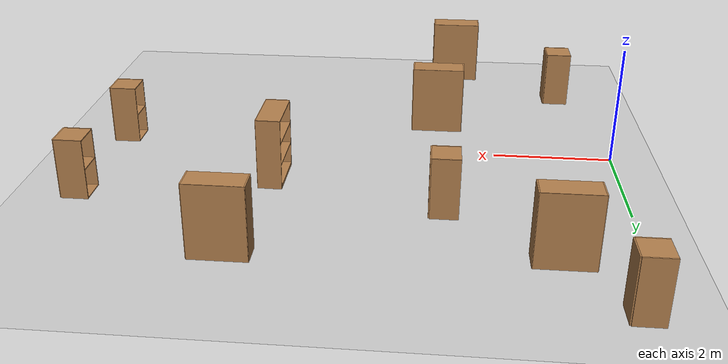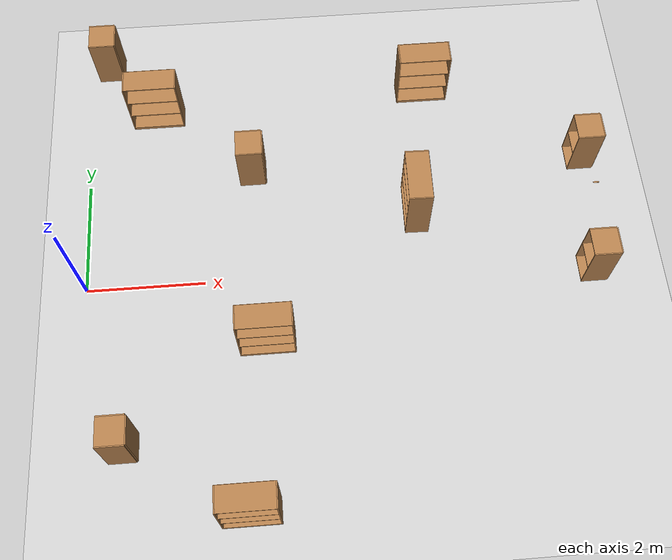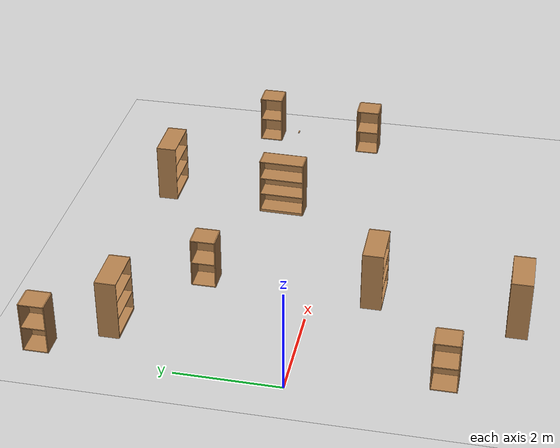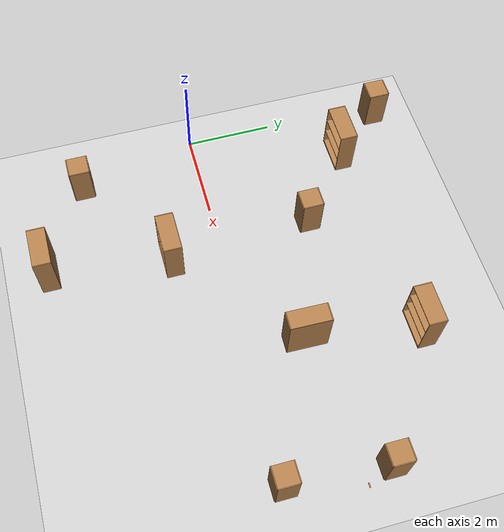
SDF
<sdf version="1.7">
 <world name="default">
  <model name="ground_plane">
   <static>1</static>
   <link name="link">
    <collision name="collision">
     <geometry><plane><normal>0 0 1</normal><size>100 100</size></plane></geometry>
     <surface><friction><ode><mu>100</mu><mu2>50</mu2></ode></friction></surface>
    </collision>
    <visual name="visual">
     <cast_shadows>0</cast_shadows>
     <geometry><plane><normal>0 0 1</normal><size>100 100</size></plane></geometry>
     <material>
      <script><uri>file://media/materials/scripts/gazebo.material</uri><name>Gazebo/Grey</name></script>
     </material>
    </visual>
   </link>
  </model>
  <model name="bookshelf_clone">
   <static>1</static>
   <link name="link">
    <inertial><mass>1</mass></inertial>
    <collision name="back">
     <pose>0 0.005 0.6 0 -0 0</pose>
     <geometry><box><size>0.9 0.01 1.2</size></box></geometry>
    </collision>
    <visual name="visual1">
     <pose>0 0.005 0.6 0 -0 0</pose>
     <geometry><box><size>0.9 0.01 1.2</size></box></geometry>
     <material>
      <script><uri>file://media/materials/scripts/gazebo.material</uri><name>Gazebo/Wood</name></script>
     </material>
    </visual>
    <collision name="left_side">
     <pose>0.45 -0.195 0.6 0 -0 0</pose>
     <geometry><box><size>0.02 0.4 1.2</size></box></geometry>
    </collision>
    <visual name="visual2">
     <pose>0.45 -0.195 0.6 0 -0 0</pose>
     <geometry><box><size>0.02 0.4 1.2</size></box></geometry>
     <material>
      <script><uri>file://media/materials/scripts/gazebo.material</uri><name>Gazebo/Wood</name></script>
     </material>
    </visual>
    <collision name="right_side">
     <pose>-0.45 -0.195 0.6 0 -0 0</pose>
     <geometry><box><size>0.02 0.4 1.2</size></box></geometry>
    </collision>
    <visual name="visual3">
     <pose>-0.45 -0.195 0.6 0 -0 0</pose>
     <geometry><box><size>0.02 0.4 1.2</size></box></geometry>
     <material>
      <script><uri>file://media/materials/scripts/gazebo.material</uri><name>Gazebo/Wood</name></script>
     </material>
    </visual>
    <collision name="bottom">
     <pose>0 -0.195 0.03 0 -0 0</pose>
     <geometry><box><size>0.88 0.4 0.06</size></box></geometry>
    </collision>
    <visual name="visual4">
     <pose>0 -0.195 0.03 0 -0 0</pose>
     <geometry><box><size>0.88 0.4 0.06</size></box></geometry>
     <material>
      <script><uri>file://media/materials/scripts/gazebo.material</uri><name>Gazebo/Wood</name></script>
     </material>
    </visual>
    <collision name="top">
     <pose>0 -0.195 1.19 0 -0 0</pose>
     <geometry><box><size>0.88 0.4 0.02</size></box></geometry>
    </collision>
    <visual name="visual5">
     <pose>0 -0.195 1.19 0 -0 0</pose>
     <geometry><box><size>0.88 0.4 0.02</size></box></geometry>
     <material>
      <script><uri>file://media/materials/scripts/gazebo.material</uri><name>Gazebo/Wood</name></script>
     </material>
    </visual>
    <collision name="low_shelf">
     <pose>0 -0.195 0.43 0 -0 0</pose>
     <geometry><box><size>0.88 0.4 0.02</size></box></geometry>
    </collision>
    <visual name="visual6">
     <pose>0 -0.195 0.43 0 -0 0</pose>
     <geometry><box><size>0.88 0.4 0.02</size></box></geometry>
     <material>
      <script><uri>file://media/materials/scripts/gazebo.material</uri><name>Gazebo/Wood</name></script>
     </material>
    </visual>
    <collision name="high_shelf">
     <pose>0 -0.195 0.8 0 -0 0</pose>
     <geometry><box><size>0.88 0.4 0.02</size></box></geometry>
    </collision>
    <visual name="visual7">
     <pose>0 -0.195 0.8 0 -0 0</pose>
     <geometry><box><size>0.88 0.4 0.02</size></box></geometry>
     <material>
      <script><uri>file://media/materials/scripts/gazebo.material</uri><name>Gazebo/Wood</name></script>
     </material>
    </visual>
   </link>
   <pose>6.07825 3.82943 0 0 -0 0</pose>
  </model>
  <model name="bookshelf_clone_0">
   <static>1</static>
   <link name="link">
    <inertial><mass>1</mass></inertial>
    <collision name="back">
     <pose>0 0.005 0.6 0 -0 0</pose>
     <geometry><box><size>0.9 0.01 1.2</size></box></geometry>
    </collision>
    <visual name="visual1">
     <pose>0 0.005 0.6 0 -0 0</pose>
     <geometry><box><size>0.9 0.01 1.2</size></box></geometry>
     <material>
      <script><uri>file://media/materials/scripts/gazebo.material</uri><name>Gazebo/Wood</name></script>
     </material>
    </visual>
    <collision name="left_side">
     <pose>0.45 -0.195 0.6 0 -0 0</pose>
     <geometry><box><size>0.02 0.4 1.2</size></box></geometry>
    </collision>
    <visual name="visual2">
     <pose>0.45 -0.195 0.6 0 -0 0</pose>
     <geometry><box><size>0.02 0.4 1.2</size></box></geometry>
     <material>
      <script><uri>file://media/materials/scripts/gazebo.material</uri><name>Gazebo/Wood</name></script>
     </material>
    </visual>
    <collision name="right_side">
     <pose>-0.45 -0.195 0.6 0 -0 0</pose>
     <geometry><box><size>0.02 0.4 1.2</size></box></geometry>
    </collision>
    <visual name="visual3">
     <pose>-0.45 -0.195 0.6 0 -0 0</pose>
     <geometry><box><size>0.02 0.4 1.2</size></box></geometry>
     <material>
      <script><uri>file://media/materials/scripts/gazebo.material</uri><name>Gazebo/Wood</name></script>
     </material>
    </visual>
    <collision name="bottom">
     <pose>0 -0.195 0.03 0 -0 0</pose>
     <geometry><box><size>0.88 0.4 0.06</size></box></geometry>
    </collision>
    <visual name="visual4">
     <pose>0 -0.195 0.03 0 -0 0</pose>
     <geometry><box><size>0.88 0.4 0.06</size></box></geometry>
     <material>
      <script><uri>file://media/materials/scripts/gazebo.material</uri><name>Gazebo/Wood</name></script>
     </material>
    </visual>
    <collision name="top">
     <pose>0 -0.195 1.19 0 -0 0</pose>
     <geometry><box><size>0.88 0.4 0.02</size></box></geometry>
    </collision>
    <visual name="visual5">
     <pose>0 -0.195 1.19 0 -0 0</pose>
     <geometry><box><size>0.88 0.4 0.02</size></box></geometry>
     <material>
      <script><uri>file://media/materials/scripts/gazebo.material</uri><name>Gazebo/Wood</name></script>
     </material>
    </visual>
    <collision name="low_shelf">
     <pose>0 -0.195 0.43 0 -0 0</pose>
     <geometry><box><size>0.88 0.4 0.02</size></box></geometry>
    </collision>
    <visual name="visual6">
     <pose>0 -0.195 0.43 0 -0 0</pose>
     <geometry><box><size>0.88 0.4 0.02</size></box></geometry>
     <material>
      <script><uri>file://media/materials/scripts/gazebo.material</uri><name>Gazebo/Wood</name></script>
     </material>
    </visual>
    <collision name="high_shelf">
     <pose>0 -0.195 0.8 0 -0 0</pose>
     <geometry><box><size>0.88 0.4 0.02</size></box></geometry>
    </collision>
    <visual name="visual7">
     <pose>0 -0.195 0.8 0 -0 0</pose>
     <geometry><box><size>0.88 0.4 0.02</size></box></geometry>
     <material>
      <script><uri>file://media/materials/scripts/gazebo.material</uri><name>Gazebo/Wood</name></script>
     </material>
    </visual>
   </link>
   <pose>2.66451 -3.70633 0 0 -0 0</pose>
  </model>
  <model name="cabinet_clone">
   <static>1</static>
   <link name="cabinet_bottom_plate">
    <inertial>
     <pose>0 0 -1 0 -0 0</pose>
     <inertia><ixx>2.05</ixx><ixy>0</ixy><ixz>0</ixz><iyy>2.05</iyy><iyz>0</iyz><izz>2.05</izz></inertia>
     <mass>25</mass>
    </inertial>
    <collision name="cabinet_bottom_plate_geom">
     <pose>0 0 0.01 0 -0 0</pose>
     <geometry><box><size>0.45 0.45 0.02</size></box></geometry>
    </collision>
    <visual name="cabinet_bottom_plate_geom_visual">
     <pose>0 0 0.01 0 -0 0</pose>
     <geometry><box><size>0.45 0.45 0.02</size></box></geometry>
     <material>
      <script><uri>file://media/materials/scripts/gazebo.material</uri><name>Gazebo/Wood</name></script>
     </material>
    </visual>
    <collision name="cabinet_bottom_plate_geom_cabinet_back_plate">
     <pose>0.235 0 0.51 0 -0 0</pose>
     <geometry><box><size>0.02 0.45 1.02</size></box></geometry>
    </collision>
    <visual name="cabinet_bottom_plate_geom_cabinet_back_plate_visual">
     <pose>0.235 0 0.51 0 -0 0</pose>
     <geometry><box><size>0.02 0.45 1.02</size></box></geometry>
     <material>
      <script><uri>file://media/materials/scripts/gazebo.material</uri><name>Gazebo/Wood</name></script>
     </material>
    </visual>
    <collision name="cabinet_bottom_plate_geom_cabinet_left_plate">
     <pose>0 0.235 0.51 0 -0 0</pose>
     <geometry><box><size>0.45 0.02 1.02</size></box></geometry>
    </collision>
    <visual name="cabinet_bottom_plate_geom_cabinet_left_plate_visual">
     <pose>0 0.235 0.51 0 -0 0</pose>
     <geometry><box><size>0.45 0.02 1.02</size></box></geometry>
     <material>
      <script><uri>file://media/materials/scripts/gazebo.material</uri><name>Gazebo/Wood</name></script>
     </material>
    </visual>
    <collision name="cabinet_bottom_plate_geom_cabinet_middle_plate">
     <pose>0 0 0.51 0 -0 0</pose>
     <geometry><box><size>0.45 0.45 0.02</size></box></geometry>
    </collision>
    <visual name="cabinet_bottom_plate_geom_cabinet_middle_plate_visual">
     <pose>0 0 0.51 0 -0 0</pose>
     <geometry><box><size>0.45 0.45 0.02</size></box></geometry>
     <material>
      <script><uri>file://media/materials/scripts/gazebo.material</uri><name>Gazebo/Wood</name></script>
     </material>
    </visual>
    <collision name="cabinet_bottom_plate_geom_cabinet_right_plate">
     <pose>0 -0.235 0.51 0 -0 0</pose>
     <geometry><box><size>0.45 0.02 1.02</size></box></geometry>
    </collision>
    <visual name="cabinet_bottom_plate_geom_cabinet_right_plate_visual">
     <pose>0 -0.235 0.51 0 -0 0</pose>
     <geometry><box><size>0.45 0.02 1.02</size></box></geometry>
     <material>
      <script><uri>file://media/materials/scripts/gazebo.material</uri><name>Gazebo/Wood</name></script>
     </material>
    </visual>
    <collision name="cabinet_bottom_plate_geom_cabinet_top_plate">
     <pose>0 0 1.01 0 -0 0</pose>
     <geometry><box><size>0.45 0.45 0.02</size></box></geometry>
    </collision>
    <visual name="cabinet_bottom_plate_geom_cabinet_top_plate_visual">
     <pose>0 0 1.01 0 -0 0</pose>
     <geometry><box><size>0.45 0.45 0.02</size></box></geometry>
     <material>
      <script><uri>file://media/materials/scripts/gazebo.material</uri><name>Gazebo/Wood</name></script>
     </material>
    </visual>
   </link>
   <pose>2.88557 2.11022 0 0 -0 0</pose>
  </model>
  <model name="cabinet_clone_0">
   <static>1</static>
   <link name="cabinet_bottom_plate">
    <inertial>
     <pose>0 0 -1 0 -0 0</pose>
     <inertia><ixx>2.05</ixx><ixy>0</ixy><ixz>0</ixz><iyy>2.05</iyy><iyz>0</iyz><izz>2.05</izz></inertia>
     <mass>25</mass>
    </inertial>
    <collision name="cabinet_bottom_plate_geom">
     <pose>0 0 0.01 0 -0 0</pose>
     <geometry><box><size>0.45 0.45 0.02</size></box></geometry>
    </collision>
    <visual name="cabinet_bottom_plate_geom_visual">
     <pose>0 0 0.01 0 -0 0</pose>
     <geometry><box><size>0.45 0.45 0.02</size></box></geometry>
     <material>
      <script><uri>file://media/materials/scripts/gazebo.material</uri><name>Gazebo/Wood</name></script>
     </material>
    </visual>
    <collision name="cabinet_bottom_plate_geom_cabinet_back_plate">
     <pose>0.235 0 0.51 0 -0 0</pose>
     <geometry><box><size>0.02 0.45 1.02</size></box></geometry>
    </collision>
    <visual name="cabinet_bottom_plate_geom_cabinet_back_plate_visual">
     <pose>0.235 0 0.51 0 -0 0</pose>
     <geometry><box><size>0.02 0.45 1.02</size></box></geometry>
     <material>
      <script><uri>file://media/materials/scripts/gazebo.material</uri><name>Gazebo/Wood</name></script>
     </material>
    </visual>
    <collision name="cabinet_bottom_plate_geom_cabinet_left_plate">
     <pose>0 0.235 0.51 0 -0 0</pose>
     <geometry><box><size>0.45 0.02 1.02</size></box></geometry>
    </collision>
    <visual name="cabinet_bottom_plate_geom_cabinet_left_plate_visual">
     <pose>0 0.235 0.51 0 -0 0</pose>
     <geometry><box><size>0.45 0.02 1.02</size></box></geometry>
     <material>
      <script><uri>file://media/materials/scripts/gazebo.material</uri><name>Gazebo/Wood</name></script>
     </material>
    </visual>
    <collision name="cabinet_bottom_plate_geom_cabinet_middle_plate">
     <pose>0 0 0.51 0 -0 0</pose>
     <geometry><box><size>0.45 0.45 0.02</size></box></geometry>
    </collision>
    <visual name="cabinet_bottom_plate_geom_cabinet_middle_plate_visual">
     <pose>0 0 0.51 0 -0 0</pose>
     <geometry><box><size>0.45 0.45 0.02</size></box></geometry>
     <material>
      <script><uri>file://media/materials/scripts/gazebo.material</uri><name>Gazebo/Wood</name></script>
     </material>
    </visual>
    <collision name="cabinet_bottom_plate_geom_cabinet_right_plate">
     <pose>0 -0.235 0.51 0 -0 0</pose>
     <geometry><box><size>0.45 0.02 1.02</size></box></geometry>
    </collision>
    <visual name="cabinet_bottom_plate_geom_cabinet_right_plate_visual">
     <pose>0 -0.235 0.51 0 -0 0</pose>
     <geometry><box><size>0.45 0.02 1.02</size></box></geometry>
     <material>
      <script><uri>file://media/materials/scripts/gazebo.material</uri><name>Gazebo/Wood</name></script>
     </material>
    </visual>
    <collision name="cabinet_bottom_plate_geom_cabinet_top_plate">
     <pose>0 0 1.01 0 -0 0</pose>
     <geometry><box><size>0.45 0.45 0.02</size></box></geometry>
    </collision>
    <visual name="cabinet_bottom_plate_geom_cabinet_top_plate_visual">
     <pose>0 0 1.01 0 -0 0</pose>
     <geometry><box><size>0.45 0.45 0.02</size></box></geometry>
     <material>
      <script><uri>file://media/materials/scripts/gazebo.material</uri><name>Gazebo/Wood</name></script>
     </material>
    </visual>
   </link>
   <pose>0.677816 -2.7426 0 0 -0 0</pose>
  </model>
  <model name="cabinet_clone_clone">
   <static>1</static>
   <link name="cabinet_bottom_plate">
    <inertial>
     <pose>0 0 -1 0 -0 0</pose>
     <inertia><ixx>2.05</ixx><ixy>0</ixy><ixz>0</ixz><iyy>2.05</iyy><iyz>0</iyz><izz>2.05</izz></inertia>
     <mass>25</mass>
    </inertial>
    <collision name="cabinet_bottom_plate_geom">
     <pose>0 0 0.01 0 -0 0</pose>
     <geometry><box><size>0.45 0.45 0.02</size></box></geometry>
    </collision>
    <visual name="cabinet_bottom_plate_geom_visual">
     <pose>0 0 0.01 0 -0 0</pose>
     <geometry><box><size>0.45 0.45 0.02</size></box></geometry>
     <material>
      <script><uri>file://media/materials/scripts/gazebo.material</uri><name>Gazebo/Wood</name></script>
     </material>
    </visual>
    <collision name="cabinet_bottom_plate_geom_cabinet_back_plate">
     <pose>0.235 0 0.51 0 -0 0</pose>
     <geometry><box><size>0.02 0.45 1.02</size></box></geometry>
    </collision>
    <visual name="cabinet_bottom_plate_geom_cabinet_back_plate_visual">
     <pose>0.235 0 0.51 0 -0 0</pose>
     <geometry><box><size>0.02 0.45 1.02</size></box></geometry>
     <material>
      <script><uri>file://media/materials/scripts/gazebo.material</uri><name>Gazebo/Wood</name></script>
     </material>
    </visual>
    <collision name="cabinet_bottom_plate_geom_cabinet_left_plate">
     <pose>0 0.235 0.51 0 -0 0</pose>
     <geometry><box><size>0.45 0.02 1.02</size></box></geometry>
    </collision>
    <visual name="cabinet_bottom_plate_geom_cabinet_left_plate_visual">
     <pose>0 0.235 0.51 0 -0 0</pose>
     <geometry><box><size>0.45 0.02 1.02</size></box></geometry>
     <material>
      <script><uri>file://media/materials/scripts/gazebo.material</uri><name>Gazebo/Wood</name></script>
     </material>
    </visual>
    <collision name="cabinet_bottom_plate_geom_cabinet_middle_plate">
     <pose>0 0 0.51 0 -0 0</pose>
     <geometry><box><size>0.45 0.45 0.02</size></box></geometry>
    </collision>
    <visual name="cabinet_bottom_plate_geom_cabinet_middle_plate_visual">
     <pose>0 0 0.51 0 -0 0</pose>
     <geometry><box><size>0.45 0.45 0.02</size></box></geometry>
     <material>
      <script><uri>file://media/materials/scripts/gazebo.material</uri><name>Gazebo/Wood</name></script>
     </material>
    </visual>
    <collision name="cabinet_bottom_plate_geom_cabinet_right_plate">
     <pose>0 -0.235 0.51 0 -0 0</pose>
     <geometry><box><size>0.45 0.02 1.02</size></box></geometry>
    </collision>
    <visual name="cabinet_bottom_plate_geom_cabinet_right_plate_visual">
     <pose>0 -0.235 0.51 0 -0 0</pose>
     <geometry><box><size>0.45 0.02 1.02</size></box></geometry>
     <material>
      <script><uri>file://media/materials/scripts/gazebo.material</uri><name>Gazebo/Wood</name></script>
     </material>
    </visual>
    <collision name="cabinet_bottom_plate_geom_cabinet_top_plate">
     <pose>0 0 1.01 0 -0 0</pose>
     <geometry><box><size>0.45 0.45 0.02</size></box></geometry>
    </collision>
    <visual name="cabinet_bottom_plate_geom_cabinet_top_plate_visual">
     <pose>0 0 1.01 0 -0 0</pose>
     <geometry><box><size>0.45 0.45 0.02</size></box></geometry>
     <material>
      <script><uri>file://media/materials/scripts/gazebo.material</uri><name>Gazebo/Wood</name></script>
     </material>
    </visual>
   </link>
   <pose>8.76162 2.00262 0 0 -0 0</pose>
  </model>
  <model name="cabinet_clone_clone_0">
   <static>1</static>
   <link name="cabinet_bottom_plate">
    <inertial>
     <pose>0 0 -1 0 -0 0</pose>
     <inertia><ixx>2.05</ixx><ixy>0</ixy><ixz>0</ixz><iyy>2.05</iyy><iyz>0</iyz><izz>2.05</izz></inertia>
     <mass>25</mass>
    </inertial>
    <collision name="cabinet_bottom_plate_geom">
     <pose>0 0 0.01 0 -0 0</pose>
     <geometry><box><size>0.45 0.45 0.02</size></box></geometry>
    </collision>
    <visual name="cabinet_bottom_plate_geom_visual">
     <pose>0 0 0.01 0 -0 0</pose>
     <geometry><box><size>0.45 0.45 0.02</size></box></geometry>
     <material>
      <script><uri>file://media/materials/scripts/gazebo.material</uri><name>Gazebo/Wood</name></script>
     </material>
    </visual>
    <collision name="cabinet_bottom_plate_geom_cabinet_back_plate">
     <pose>0.235 0 0.51 0 -0 0</pose>
     <geometry><box><size>0.02 0.45 1.02</size></box></geometry>
    </collision>
    <visual name="cabinet_bottom_plate_geom_cabinet_back_plate_visual">
     <pose>0.235 0 0.51 0 -0 0</pose>
     <geometry><box><size>0.02 0.45 1.02</size></box></geometry>
     <material>
      <script><uri>file://media/materials/scripts/gazebo.material</uri><name>Gazebo/Wood</name></script>
     </material>
    </visual>
    <collision name="cabinet_bottom_plate_geom_cabinet_left_plate">
     <pose>0 0.235 0.51 0 -0 0</pose>
     <geometry><box><size>0.45 0.02 1.02</size></box></geometry>
    </collision>
    <visual name="cabinet_bottom_plate_geom_cabinet_left_plate_visual">
     <pose>0 0.235 0.51 0 -0 0</pose>
     <geometry><box><size>0.45 0.02 1.02</size></box></geometry>
     <material>
      <script><uri>file://media/materials/scripts/gazebo.material</uri><name>Gazebo/Wood</name></script>
     </material>
    </visual>
    <collision name="cabinet_bottom_plate_geom_cabinet_middle_plate">
     <pose>0 0 0.51 0 -0 0</pose>
     <geometry><box><size>0.45 0.45 0.02</size></box></geometry>
    </collision>
    <visual name="cabinet_bottom_plate_geom_cabinet_middle_plate_visual">
     <pose>0 0 0.51 0 -0 0</pose>
     <geometry><box><size>0.45 0.45 0.02</size></box></geometry>
     <material>
      <script><uri>file://media/materials/scripts/gazebo.material</uri><name>Gazebo/Wood</name></script>
     </material>
    </visual>
    <collision name="cabinet_bottom_plate_geom_cabinet_right_plate">
     <pose>0 -0.235 0.51 0 -0 0</pose>
     <geometry><box><size>0.45 0.02 1.02</size></box></geometry>
    </collision>
    <visual name="cabinet_bottom_plate_geom_cabinet_right_plate_visual">
     <pose>0 -0.235 0.51 0 -0 0</pose>
     <geometry><box><size>0.45 0.02 1.02</size></box></geometry>
     <material>
      <script><uri>file://media/materials/scripts/gazebo.material</uri><name>Gazebo/Wood</name></script>
     </material>
    </visual>
    <collision name="cabinet_bottom_plate_geom_cabinet_top_plate">
     <pose>0 0 1.01 0 -0 0</pose>
     <geometry><box><size>0.45 0.45 0.02</size></box></geometry>
    </collision>
    <visual name="cabinet_bottom_plate_geom_cabinet_top_plate_visual">
     <pose>0 0 1.01 0 -0 0</pose>
     <geometry><box><size>0.45 0.45 0.02</size></box></geometry>
     <material>
      <script><uri>file://media/materials/scripts/gazebo.material</uri><name>Gazebo/Wood</name></script>
     </material>
    </visual>
   </link>
   <pose>0.315863 4.58278 0 0 -0 0</pose>
  </model>
  <model name="bookshelf_clone_0_clone">
   <static>1</static>
   <link name="link">
    <inertial><mass>1</mass></inertial>
    <collision name="back">
     <pose>0 0.005 0.6 0 -0 0</pose>
     <geometry><box><size>0.9 0.01 1.2</size></box></geometry>
    </collision>
    <visual name="visual1">
     <pose>0 0.005 0.6 0 -0 0</pose>
     <geometry><box><size>0.9 0.01 1.2</size></box></geometry>
     <material>
      <script><uri>file://media/materials/scripts/gazebo.material</uri><name>Gazebo/Wood</name></script>
     </material>
    </visual>
    <collision name="left_side">
     <pose>0.45 -0.195 0.6 0 -0 0</pose>
     <geometry><box><size>0.02 0.4 1.2</size></box></geometry>
    </collision>
    <visual name="visual2">
     <pose>0.45 -0.195 0.6 0 -0 0</pose>
     <geometry><box><size>0.02 0.4 1.2</size></box></geometry>
     <material>
      <script><uri>file://media/materials/scripts/gazebo.material</uri><name>Gazebo/Wood</name></script>
     </material>
    </visual>
    <collision name="right_side">
     <pose>-0.45 -0.195 0.6 0 -0 0</pose>
     <geometry><box><size>0.02 0.4 1.2</size></box></geometry>
    </collision>
    <visual name="visual3">
     <pose>-0.45 -0.195 0.6 0 -0 0</pose>
     <geometry><box><size>0.02 0.4 1.2</size></box></geometry>
     <material>
      <script><uri>file://media/materials/scripts/gazebo.material</uri><name>Gazebo/Wood</name></script>
     </material>
    </visual>
    <collision name="bottom">
     <pose>0 -0.195 0.03 0 -0 0</pose>
     <geometry><box><size>0.88 0.4 0.06</size></box></geometry>
    </collision>
    <visual name="visual4">
     <pose>0 -0.195 0.03 0 -0 0</pose>
     <geometry><box><size>0.88 0.4 0.06</size></box></geometry>
     <material>
      <script><uri>file://media/materials/scripts/gazebo.material</uri><name>Gazebo/Wood</name></script>
     </material>
    </visual>
    <collision name="top">
     <pose>0 -0.195 1.19 0 -0 0</pose>
     <geometry><box><size>0.88 0.4 0.02</size></box></geometry>
    </collision>
    <visual name="visual5">
     <pose>0 -0.195 1.19 0 -0 0</pose>
     <geometry><box><size>0.88 0.4 0.02</size></box></geometry>
     <material>
      <script><uri>file://media/materials/scripts/gazebo.material</uri><name>Gazebo/Wood</name></script>
     </material>
    </visual>
    <collision name="low_shelf">
     <pose>0 -0.195 0.43 0 -0 0</pose>
     <geometry><box><size>0.88 0.4 0.02</size></box></geometry>
    </collision>
    <visual name="visual6">
     <pose>0 -0.195 0.43 0 -0 0</pose>
     <geometry><box><size>0.88 0.4 0.02</size></box></geometry>
     <material>
      <script><uri>file://media/materials/scripts/gazebo.material</uri><name>Gazebo/Wood</name></script>
     </material>
    </visual>
    <collision name="high_shelf">
     <pose>0 -0.195 0.8 0 -0 0</pose>
     <geometry><box><size>0.88 0.4 0.02</size></box></geometry>
    </collision>
    <visual name="visual7">
     <pose>0 -0.195 0.8 0 -0 0</pose>
     <geometry><box><size>0.88 0.4 0.02</size></box></geometry>
     <material>
      <script><uri>file://media/materials/scripts/gazebo.material</uri><name>Gazebo/Wood</name></script>
     </material>
    </visual>
   </link>
   <pose>3.02321 -0.96416 0 0 -0 0</pose>
  </model>
  <model name="cabinet_clone_2">
   <static>1</static>
   <link name="cabinet_bottom_plate">
    <inertial>
     <pose>0 0 -1 0 -0 0</pose>
     <inertia><ixx>2.05</ixx><ixy>0</ixy><ixz>0</ixz><iyy>2.05</iyy><iyz>0</iyz><izz>2.05</izz></inertia>
     <mass>25</mass>
    </inertial>
    <collision name="cabinet_bottom_plate_geom">
     <pose>0 0 0.01 0 -0 0</pose>
     <geometry><box><size>0.45 0.45 0.02</size></box></geometry>
    </collision>
    <visual name="cabinet_bottom_plate_geom_visual">
     <pose>0 0 0.01 0 -0 0</pose>
     <geometry><box><size>0.45 0.45 0.02</size></box></geometry>
     <material>
      <script><uri>file://media/materials/scripts/gazebo.material</uri><name>Gazebo/Wood</name></script>
     </material>
    </visual>
    <collision name="cabinet_bottom_plate_geom_cabinet_back_plate">
     <pose>0.235 0 0.51 0 -0 0</pose>
     <geometry><box><size>0.02 0.45 1.02</size></box></geometry>
    </collision>
    <visual name="cabinet_bottom_plate_geom_cabinet_back_plate_visual">
     <pose>0.235 0 0.51 0 -0 0</pose>
     <geometry><box><size>0.02 0.45 1.02</size></box></geometry>
     <material>
      <script><uri>file://media/materials/scripts/gazebo.material</uri><name>Gazebo/Wood</name></script>
     </material>
    </visual>
    <collision name="cabinet_bottom_plate_geom_cabinet_left_plate">
     <pose>0 0.235 0.51 0 -0 0</pose>
     <geometry><box><size>0.45 0.02 1.02</size></box></geometry>
    </collision>
    <visual name="cabinet_bottom_plate_geom_cabinet_left_plate_visual">
     <pose>0 0.235 0.51 0 -0 0</pose>
     <geometry><box><size>0.45 0.02 1.02</size></box></geometry>
     <material>
      <script><uri>file://media/materials/scripts/gazebo.material</uri><name>Gazebo/Wood</name></script>
     </material>
    </visual>
    <collision name="cabinet_bottom_plate_geom_cabinet_middle_plate">
     <pose>0 0 0.51 0 -0 0</pose>
     <geometry><box><size>0.45 0.45 0.02</size></box></geometry>
    </collision>
    <visual name="cabinet_bottom_plate_geom_cabinet_middle_plate_visual">
     <pose>0 0 0.51 0 -0 0</pose>
     <geometry><box><size>0.45 0.45 0.02</size></box></geometry>
     <material>
      <script><uri>file://media/materials/scripts/gazebo.material</uri><name>Gazebo/Wood</name></script>
     </material>
    </visual>
    <collision name="cabinet_bottom_plate_geom_cabinet_right_plate">
     <pose>0 -0.235 0.51 0 -0 0</pose>
     <geometry><box><size>0.45 0.02 1.02</size></box></geometry>
    </collision>
    <visual name="cabinet_bottom_plate_geom_cabinet_right_plate_visual">
     <pose>0 -0.235 0.51 0 -0 0</pose>
     <geometry><box><size>0.45 0.02 1.02</size></box></geometry>
     <material>
      <script><uri>file://media/materials/scripts/gazebo.material</uri><name>Gazebo/Wood</name></script>
     </material>
    </visual>
    <collision name="cabinet_bottom_plate_geom_cabinet_top_plate">
     <pose>0 0 1.01 0 -0 0</pose>
     <geometry><box><size>0.45 0.45 0.02</size></box></geometry>
    </collision>
    <visual name="cabinet_bottom_plate_geom_cabinet_top_plate_visual">
     <pose>0 0 1.01 0 -0 0</pose>
     <geometry><box><size>0.45 0.45 0.02</size></box></geometry>
     <material>
      <script><uri>file://media/materials/scripts/gazebo.material</uri><name>Gazebo/Wood</name></script>
     </material>
    </visual>
   </link>
   <pose>8.6038 -0.212444 0 0 -0 0</pose>
  </model>
  <model name="wood_block_10_2_1cm">
   <link name="link">
    <pose>0 0 0.005 0 -0 0</pose>
    <inertial>
     <mass>0.0125</mass>
     <inertia>
      <ixx>7.55208e-07</ixx>
      <ixy>0</ixy>
      <ixz>0</ixz>
      <iyy>1.05208e-05</iyy>
      <iyz>0</iyz>
      <izz>1.10677e-05</izz>
     </inertia>
    </inertial>
    <collision name="collision">
     <geometry><box><size>0.1 0.025 0.01</size></box></geometry>
     <surface>
      <contact>
       <poissons_ratio>0.347</poissons_ratio>
       <elastic_modulus>8.8e+09</elastic_modulus>
       <ode><kp>100000</kp><kd>1</kd><max_vel>1</max_vel><min_depth>0.001</min_depth></ode>
      </contact>
      <friction>
       <torsional>
        <coefficient>1</coefficient>
        <use_patch_radius>0</use_patch_radius>
        <surface_radius>0.05</surface_radius>
       </torsional>
      </friction>
     </surface>
    </collision>
    <visual name="visual">
     <geometry><box><size>0.1 0.025 0.01</size></box></geometry>
     <material>
      <script><uri>file://media/materials/scripts/gazebo.material</uri><name>Gazebo/Wood</name></script>
     </material>
    </visual>
   </link>
   <pose>9.01409 1.45076 -0.001 0 -0 0</pose>
  </model>
  <model name="bookshelf_clone_1_clone">
   <static>1</static>
   <link name="link">
    <inertial><mass>1</mass></inertial>
    <collision name="back">
     <pose>0 0.005 0.6 0 -0 0</pose>
     <geometry><box><size>0.9 0.01 1.2</size></box></geometry>
    </collision>
    <visual name="visual1">
     <pose>0 0.005 0.6 0 -0 0</pose>
     <geometry><box><size>0.9 0.01 1.2</size></box></geometry>
     <material>
      <script><uri>file://media/materials/scripts/gazebo.material</uri><name>Gazebo/Wood</name></script>
     </material>
    </visual>
    <collision name="left_side">
     <pose>0.45 -0.195 0.6 0 -0 0</pose>
     <geometry><box><size>0.02 0.4 1.2</size></box></geometry>
    </collision>
    <visual name="visual2">
     <pose>0.45 -0.195 0.6 0 -0 0</pose>
     <geometry><box><size>0.02 0.4 1.2</size></box></geometry>
     <material>
      <script><uri>file://media/materials/scripts/gazebo.material</uri><name>Gazebo/Wood</name></script>
     </material>
    </visual>
    <collision name="right_side">
     <pose>-0.45 -0.195 0.6 0 -0 0</pose>
     <geometry><box><size>0.02 0.4 1.2</size></box></geometry>
    </collision>
    <visual name="visual3">
     <pose>-0.45 -0.195 0.6 0 -0 0</pose>
     <geometry><box><size>0.02 0.4 1.2</size></box></geometry>
     <material>
      <script><uri>file://media/materials/scripts/gazebo.material</uri><name>Gazebo/Wood</name></script>
     </material>
    </visual>
    <collision name="bottom">
     <pose>0 -0.195 0.03 0 -0 0</pose>
     <geometry><box><size>0.88 0.4 0.06</size></box></geometry>
    </collision>
    <visual name="visual4">
     <pose>0 -0.195 0.03 0 -0 0</pose>
     <geometry><box><size>0.88 0.4 0.06</size></box></geometry>
     <material>
      <script><uri>file://media/materials/scripts/gazebo.material</uri><name>Gazebo/Wood</name></script>
     </material>
    </visual>
    <collision name="top">
     <pose>0 -0.195 1.19 0 -0 0</pose>
     <geometry><box><size>0.88 0.4 0.02</size></box></geometry>
    </collision>
    <visual name="visual5">
     <pose>0 -0.195 1.19 0 -0 0</pose>
     <geometry><box><size>0.88 0.4 0.02</size></box></geometry>
     <material>
      <script><uri>file://media/materials/scripts/gazebo.material</uri><name>Gazebo/Wood</name></script>
     </material>
    </visual>
    <collision name="low_shelf">
     <pose>0 -0.195 0.43 0 -0 0</pose>
     <geometry><box><size>0.88 0.4 0.02</size></box></geometry>
    </collision>
    <visual name="visual6">
     <pose>0 -0.195 0.43 0 -0 0</pose>
     <geometry><box><size>0.88 0.4 0.02</size></box></geometry>
     <material>
      <script><uri>file://media/materials/scripts/gazebo.material</uri><name>Gazebo/Wood</name></script>
     </material>
    </visual>
    <collision name="high_shelf">
     <pose>0 -0.195 0.8 0 -0 0</pose>
     <geometry><box><size>0.88 0.4 0.02</size></box></geometry>
    </collision>
    <visual name="visual7">
     <pose>0 -0.195 0.8 0 -0 0</pose>
     <geometry><box><size>0.88 0.4 0.02</size></box></geometry>
     <material>
      <script><uri>file://media/materials/scripts/gazebo.material</uri><name>Gazebo/Wood</name></script>
     </material>
    </visual>
   </link>
   <pose>1.2138 3.60516 0 0 -0 0</pose>
  </model>
  <model name="bookshelf_clone_clone_clone">
   <static>1</static>
   <link name="link">
    <inertial><mass>1</mass></inertial>
    <collision name="back">
     <pose>0 0.005 0.6 0 -0 0</pose>
     <geometry><box><size>0.9 0.01 1.2</size></box></geometry>
    </collision>
    <visual name="visual1">
     <pose>0 0.005 0.6 0 -0 0</pose>
     <geometry><box><size>0.9 0.01 1.2</size></box></geometry>
     <material>
      <script><uri>file://media/materials/scripts/gazebo.material</uri><name>Gazebo/Wood</name></script>
     </material>
    </visual>
    <collision name="left_side">
     <pose>0.45 -0.195 0.6 0 -0 0</pose>
     <geometry><box><size>0.02 0.4 1.2</size></box></geometry>
    </collision>
    <visual name="visual2">
     <pose>0.45 -0.195 0.6 0 -0 0</pose>
     <geometry><box><size>0.02 0.4 1.2</size></box></geometry>
     <material>
      <script><uri>file://media/materials/scripts/gazebo.material</uri><name>Gazebo/Wood</name></script>
     </material>
    </visual>
    <collision name="right_side">
     <pose>-0.45 -0.195 0.6 0 -0 0</pose>
     <geometry><box><size>0.02 0.4 1.2</size></box></geometry>
    </collision>
    <visual name="visual3">
     <pose>-0.45 -0.195 0.6 0 -0 0</pose>
     <geometry><box><size>0.02 0.4 1.2</size></box></geometry>
     <material>
      <script><uri>file://media/materials/scripts/gazebo.material</uri><name>Gazebo/Wood</name></script>
     </material>
    </visual>
    <collision name="bottom">
     <pose>0 -0.195 0.03 0 -0 0</pose>
     <geometry><box><size>0.88 0.4 0.06</size></box></geometry>
    </collision>
    <visual name="visual4">
     <pose>0 -0.195 0.03 0 -0 0</pose>
     <geometry><box><size>0.88 0.4 0.06</size></box></geometry>
     <material>
      <script><uri>file://media/materials/scripts/gazebo.material</uri><name>Gazebo/Wood</name></script>
     </material>
    </visual>
    <collision name="top">
     <pose>0 -0.195 1.19 0 -0 0</pose>
     <geometry><box><size>0.88 0.4 0.02</size></box></geometry>
    </collision>
    <visual name="visual5">
     <pose>0 -0.195 1.19 0 -0 0</pose>
     <geometry><box><size>0.88 0.4 0.02</size></box></geometry>
     <material>
      <script><uri>file://media/materials/scripts/gazebo.material</uri><name>Gazebo/Wood</name></script>
     </material>
    </visual>
    <collision name="low_shelf">
     <pose>0 -0.195 0.43 0 -0 0</pose>
     <geometry><box><size>0.88 0.4 0.02</size></box></geometry>
    </collision>
    <visual name="visual6">
     <pose>0 -0.195 0.43 0 -0 0</pose>
     <geometry><box><size>0.88 0.4 0.02</size></box></geometry>
     <material>
      <script><uri>file://media/materials/scripts/gazebo.material</uri><name>Gazebo/Wood</name></script>
     </material>
    </visual>
    <collision name="high_shelf">
     <pose>0 -0.195 0.8 0 -0 0</pose>
     <geometry><box><size>0.88 0.4 0.02</size></box></geometry>
    </collision>
    <visual name="visual7">
     <pose>0 -0.195 0.8 0 -0 0</pose>
     <geometry><box><size>0.88 0.4 0.02</size></box></geometry>
     <material>
      <script><uri>file://media/materials/scripts/gazebo.material</uri><name>Gazebo/Wood</name></script>
     </material>
    </visual>
   </link>
   <pose>5.89752 1.15208 0 0 0 -1.59228</pose>
  </model>
 </world>
</sdf>
